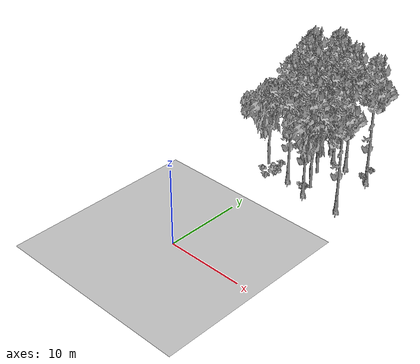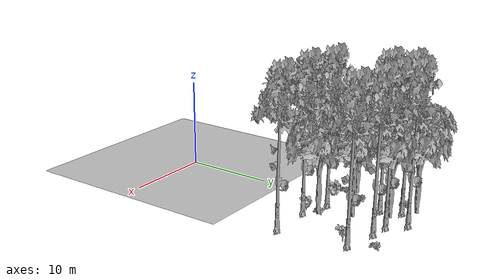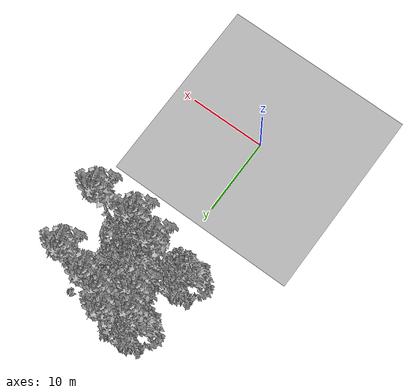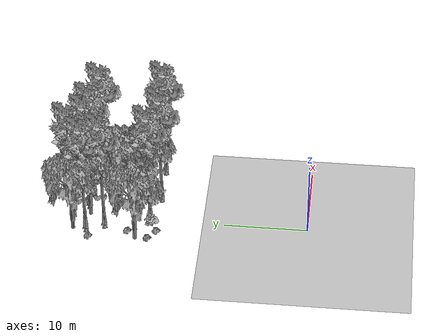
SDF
<sdf version="1.7">
 <world name="default">
  <model name="ground_plane">
   <static>1</static>
   <link name="link">
    <collision name="collision">
     <pose>-50 0 0 0 -0 0</pose>
     <geometry><plane><normal>0 0 1</normal><size>80 80</size></plane></geometry>
     <surface><contact><ode><min_depth>0.01</min_depth><max_vel>0</max_vel></ode></contact></surface>
    </collision>
    <visual name="grass">
     <cast_shadows>0</cast_shadows>
     <geometry>
      <mesh>
       <scale>0.46714285714285714 0.46714285714285714 0.1</scale>
       <uri>file://grass_plane/meshes/grass_plane.dae</uri>
      </mesh>
     </geometry>
    </visual>
   </link>
  </model>
  <model name="Tree 39">
   <static>1</static>
   <pose>8.346822367280659 25.650467886863225 0 1.57079 -0 0</pose>
   <link name="link">
    <collision name="collision">
     <geometry><mesh><scale>3.5 5 3.5</scale><uri>model://tree_9/meshes/tree_9.obj</uri></mesh></geometry>
    </collision>
    <visual name="visual">
     <geometry><mesh><scale>3.5 5 3.5</scale><uri>model://tree_9/meshes/tree_9.obj</uri></mesh></geometry>
    </visual>
   </link>
  </model>
  <model name="Tree 141">
   <static>1</static>
   <pose>9.335003848890246 18.172474519921707 0 1.57079 -0 0</pose>
   <link name="link">
    <collision name="collision">
     <geometry><mesh><scale>3.5 5 3.5</scale><uri>model://tree_9/meshes/tree_9.obj</uri></mesh></geometry>
    </collision>
    <visual name="visual">
     <geometry><mesh><scale>3.5 5 3.5</scale><uri>model://tree_9/meshes/tree_9.obj</uri></mesh></geometry>
    </visual>
   </link>
  </model>
  <model name="Tree 242">
   <static>1</static>
   <pose>2.36972256696081 26.719457486758216 0 1.57079 -0 0</pose>
   <link name="link">
    <collision name="collision">
     <geometry><mesh><scale>3.5 5 3.5</scale><uri>model://tree_9/meshes/tree_9.obj</uri></mesh></geometry>
    </collision>
    <visual name="visual">
     <geometry><mesh><scale>3.5 5 3.5</scale><uri>model://tree_9/meshes/tree_9.obj</uri></mesh></geometry>
    </visual>
   </link>
  </model>
  <model name="Tree 244">
   <static>1</static>
   <pose>4.320166763783249 18.08240769694077 0 1.57079 -0 0</pose>
   <link name="link">
    <collision name="collision">
     <geometry><mesh><scale>3.5 5 3.5</scale><uri>model://tree_9/meshes/tree_9.obj</uri></mesh></geometry>
    </collision>
    <visual name="visual">
     <geometry><mesh><scale>3.5 5 3.5</scale><uri>model://tree_9/meshes/tree_9.obj</uri></mesh></geometry>
    </visual>
   </link>
  </model>
  <model name="Tree 298">
   <static>1</static>
   <pose>0.4566692329643658 26.247513815251267 0 1.57079 -0 0</pose>
   <link name="link">
    <collision name="collision">
     <geometry><mesh><scale>3.5 5 3.5</scale><uri>model://tree_2/meshes/tree_2.obj</uri></mesh></geometry>
    </collision>
    <visual name="visual">
     <geometry><mesh><scale>3.5 5 3.5</scale><uri>model://tree_2/meshes/tree_2.obj</uri></mesh></geometry>
    </visual>
   </link>
  </model>
  <model name="Tree 375">
   <static>1</static>
   <pose>1.0179631463996728 19.104372402655336 0 1.57079 -0 0</pose>
   <link name="link">
    <collision name="collision">
     <geometry><mesh><scale>3.5 5 3.5</scale><uri>model://tree_9/meshes/tree_9.obj</uri></mesh></geometry>
    </collision>
    <visual name="visual">
     <geometry><mesh><scale>3.5 5 3.5</scale><uri>model://tree_9/meshes/tree_9.obj</uri></mesh></geometry>
    </visual>
   </link>
  </model>
  <model name="Tree 398">
   <static>1</static>
   <pose>-1.766234469779171 26.54540866024999 0 1.57079 -0 0</pose>
   <link name="link">
    <collision name="collision">
     <geometry><mesh><scale>3.5 5 3.5</scale><uri>model://tree_9/meshes/tree_9.obj</uri></mesh></geometry>
    </collision>
    <visual name="visual">
     <geometry><mesh><scale>3.5 5 3.5</scale><uri>model://tree_9/meshes/tree_9.obj</uri></mesh></geometry>
    </visual>
   </link>
  </model>
  <model name="Tree 412">
   <static>1</static>
   <pose>0.6789782982097705 28.39638929993822 0 1.57079 -0 0</pose>
   <link name="link">
    <collision name="collision">
     <geometry><mesh><scale>3.5 5 3.5</scale><uri>model://tree_9/meshes/tree_9.obj</uri></mesh></geometry>
    </collision>
    <visual name="visual">
     <geometry><mesh><scale>3.5 5 3.5</scale><uri>model://tree_9/meshes/tree_9.obj</uri></mesh></geometry>
    </visual>
   </link>
  </model>
  <model name="Tree 434">
   <static>1</static>
   <pose>4.005773596315258 19.79054173790673 0 1.57079 -0 0</pose>
   <link name="link">
    <collision name="collision">
     <geometry><mesh><scale>3.5 5 3.5</scale><uri>model://tree_2/meshes/tree_2.obj</uri></mesh></geometry>
    </collision>
    <visual name="visual">
     <geometry><mesh><scale>3.5 5 3.5</scale><uri>model://tree_2/meshes/tree_2.obj</uri></mesh></geometry>
    </visual>
   </link>
  </model>
  <model name="Tree 464">
   <static>1</static>
   <pose>-2.218123999781511 28.001489100696034 0 1.57079 -0 0</pose>
   <link name="link">
    <collision name="collision">
     <geometry><mesh><scale>3.5 5 3.5</scale><uri>model://tree_2/meshes/tree_2.obj</uri></mesh></geometry>
    </collision>
    <visual name="visual">
     <geometry><mesh><scale>3.5 5 3.5</scale><uri>model://tree_2/meshes/tree_2.obj</uri></mesh></geometry>
    </visual>
   </link>
  </model>
  <model name="Tree 472">
   <static>1</static>
   <pose>2.4932311657729684 23.012419622618488 0 1.57079 -0 0</pose>
   <link name="link">
    <collision name="collision">
     <geometry><mesh><scale>3.5 5 3.5</scale><uri>model://tree_2/meshes/tree_2.obj</uri></mesh></geometry>
    </collision>
    <visual name="visual">
     <geometry><mesh><scale>3.5 5 3.5</scale><uri>model://tree_2/meshes/tree_2.obj</uri></mesh></geometry>
    </visual>
   </link>
  </model>
  <model name="Tree 555">
   <static>1</static>
   <pose>4.56192050580885 26.458178578121036 0 1.57079 -0 0</pose>
   <link name="link">
    <collision name="collision">
     <geometry><mesh><scale>3.5 5 3.5</scale><uri>model://tree_9/meshes/tree_9.obj</uri></mesh></geometry>
    </collision>
    <visual name="visual">
     <geometry><mesh><scale>3.5 5 3.5</scale><uri>model://tree_9/meshes/tree_9.obj</uri></mesh></geometry>
    </visual>
   </link>
  </model>
  <model name="Tree 590">
   <static>1</static>
   <pose>-0.945188883876618 24.40217356050819 0 1.57079 -0 0</pose>
   <link name="link">
    <collision name="collision">
     <geometry><mesh><scale>3.5 5 3.5</scale><uri>model://tree_9/meshes/tree_9.obj</uri></mesh></geometry>
    </collision>
    <visual name="visual">
     <geometry><mesh><scale>3.5 5 3.5</scale><uri>model://tree_9/meshes/tree_9.obj</uri></mesh></geometry>
    </visual>
   </link>
  </model>
  <model name="Tree 601">
   <static>1</static>
   <pose>-3.349929556353594 20.381794437987452 0 1.57079 -0 0</pose>
   <link name="link">
    <collision name="collision">
     <geometry><mesh><scale>3.5 5 3.5</scale><uri>model://tree_2/meshes/tree_2.obj</uri></mesh></geometry>
    </collision>
    <visual name="visual">
     <geometry><mesh><scale>3.5 5 3.5</scale><uri>model://tree_2/meshes/tree_2.obj</uri></mesh></geometry>
    </visual>
   </link>
  </model>
  <model name="Bush 77">
   <static>1</static>
   <pose>3.9882995139743116 18.30423175436983 0 1.57079 -0 0</pose>
   <link name="link">
    <collision name="collision">
     <geometry><mesh><scale>2 2 2</scale><uri>model://bush_0/meshes/bush_0.obj</uri></mesh></geometry>
     <surface><contact><collide_without_contact>false</collide_without_contact></contact></surface>
    </collision>
    <visual name="visual">
     <geometry><mesh><scale>2 2 2</scale><uri>model://bush_0/meshes/bush_0.obj</uri></mesh></geometry>
    </visual>
   </link>
  </model>
  <model name="Bush 124">
   <static>1</static>
   <pose>-3.1480043835224194 18.962655090182196 0 1.57079 -0 0</pose>
   <link name="link">
    <collision name="collision">
     <geometry><mesh><scale>2 2 2</scale><uri>model://bush_2/meshes/bush_2.obj</uri></mesh></geometry>
     <surface><contact><collide_without_contact>false</collide_without_contact></contact></surface>
    </collision>
    <visual name="visual">
     <geometry><mesh><scale>2 2 2</scale><uri>model://bush_2/meshes/bush_2.obj</uri></mesh></geometry>
    </visual>
   </link>
  </model>
  <model name="Bush 225">
   <static>1</static>
   <pose>8.270430775633564 25.084978685182875 0 1.57079 -0 0</pose>
   <link name="link">
    <collision name="collision">
     <geometry><mesh><scale>2 2 2</scale><uri>model://bush_5/meshes/bush_5.obj</uri></mesh></geometry>
     <surface><contact><collide_without_contact>false</collide_without_contact></contact></surface>
    </collision>
    <visual name="visual">
     <geometry><mesh><scale>2 2 2</scale><uri>model://bush_5/meshes/bush_5.obj</uri></mesh></geometry>
    </visual>
   </link>
  </model>
  <model name="Bush 362">
   <static>1</static>
   <pose>-2.094225562291868 21.464652339076025 0 1.57079 -0 0</pose>
   <link name="link">
    <collision name="collision">
     <geometry><mesh><scale>2 2 2</scale><uri>model://bush_2/meshes/bush_2.obj</uri></mesh></geometry>
     <surface><contact><collide_without_contact>false</collide_without_contact></contact></surface>
    </collision>
    <visual name="visual">
     <geometry><mesh><scale>2 2 2</scale><uri>model://bush_2/meshes/bush_2.obj</uri></mesh></geometry>
    </visual>
   </link>
  </model>
  <model name="Bush 383">
   <static>1</static>
   <pose>-1.8341775311508073 18.037544857149996 0 1.57079 -0 0</pose>
   <link name="link">
    <collision name="collision">
     <geometry><mesh><scale>2 2 2</scale><uri>model://bush_2/meshes/bush_2.obj</uri></mesh></geometry>
     <surface><contact><collide_without_contact>false</collide_without_contact></contact></surface>
    </collision>
    <visual name="visual">
     <geometry><mesh><scale>2 2 2</scale><uri>model://bush_2/meshes/bush_2.obj</uri></mesh></geometry>
    </visual>
   </link>
  </model>
  <model name="Bush 453">
   <static>1</static>
   <pose>7.294061107473546 28.08594831596004 0 1.57079 -0 0</pose>
   <link name="link">
    <collision name="collision">
     <geometry><mesh><scale>2 2 2</scale><uri>model://bush_2/meshes/bush_2.obj</uri></mesh></geometry>
     <surface><contact><collide_without_contact>false</collide_without_contact></contact></surface>
    </collision>
    <visual name="visual">
     <geometry><mesh><scale>2 2 2</scale><uri>model://bush_2/meshes/bush_2.obj</uri></mesh></geometry>
    </visual>
   </link>
  </model>
  <model name="Bush 559">
   <static>1</static>
   <pose>-3.408712405374885 26.044221357109024 0 1.57079 -0 0</pose>
   <link name="link">
    <collision name="collision">
     <geometry><mesh><scale>2 2 2</scale><uri>model://bush_2/meshes/bush_2.obj</uri></mesh></geometry>
     <surface><contact><collide_without_contact>false</collide_without_contact></contact></surface>
    </collision>
    <visual name="visual">
     <geometry><mesh><scale>2 2 2</scale><uri>model://bush_2/meshes/bush_2.obj</uri></mesh></geometry>
    </visual>
   </link>
  </model>
  <model name="Bush 573">
   <static>1</static>
   <pose>3.4766426339502914 19.500380407895832 0 1.57079 -0 0</pose>
   <link name="link">
    <collision name="collision">
     <geometry><mesh><scale>2 2 2</scale><uri>model://bush_2/meshes/bush_2.obj</uri></mesh></geometry>
     <surface><contact><collide_without_contact>false</collide_without_contact></contact></surface>
    </collision>
    <visual name="visual">
     <geometry><mesh><scale>2 2 2</scale><uri>model://bush_2/meshes/bush_2.obj</uri></mesh></geometry>
    </visual>
   </link>
  </model>
  <model name="Bush 606">
   <static>1</static>
   <pose>-0.9306889607604987 18.59948192569898 0 1.57079 -0 0</pose>
   <link name="link">
    <collision name="collision">
     <geometry><mesh><scale>2 2 2</scale><uri>model://bush_1/meshes/bush_1.obj</uri></mesh></geometry>
     <surface><contact><collide_without_contact>false</collide_without_contact></contact></surface>
    </collision>
    <visual name="visual">
     <geometry><mesh><scale>2 2 2</scale><uri>model://bush_1/meshes/bush_1.obj</uri></mesh></geometry>
    </visual>
   </link>
  </model>
 </world>
</sdf>
